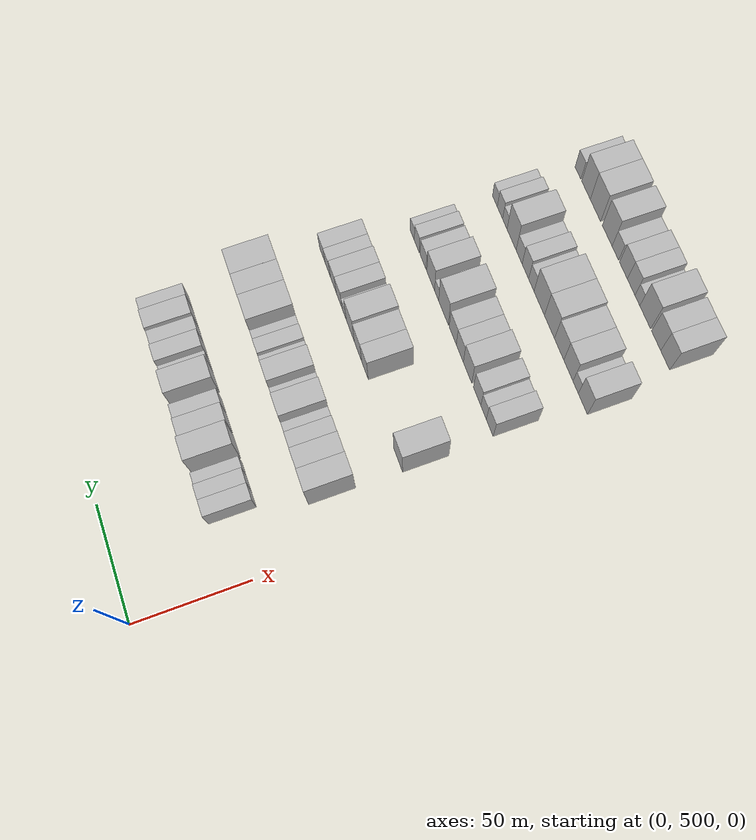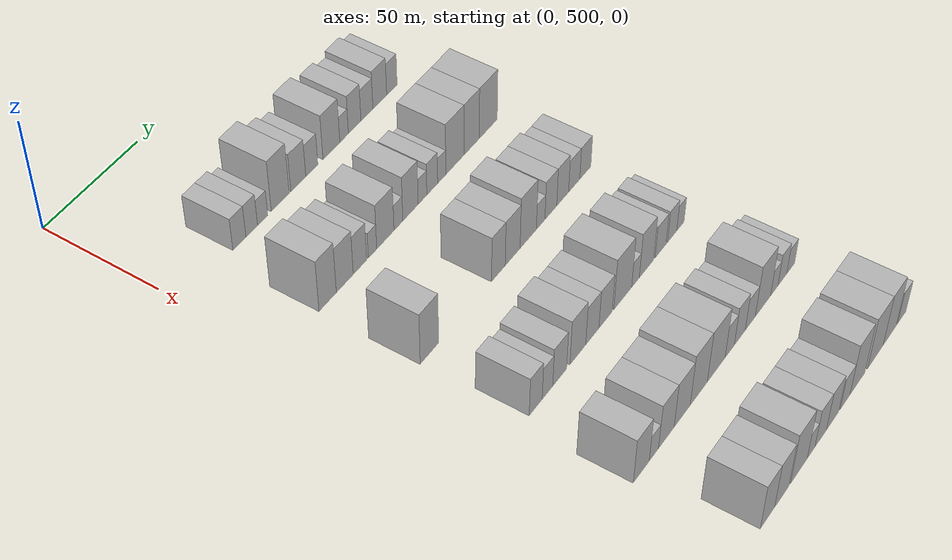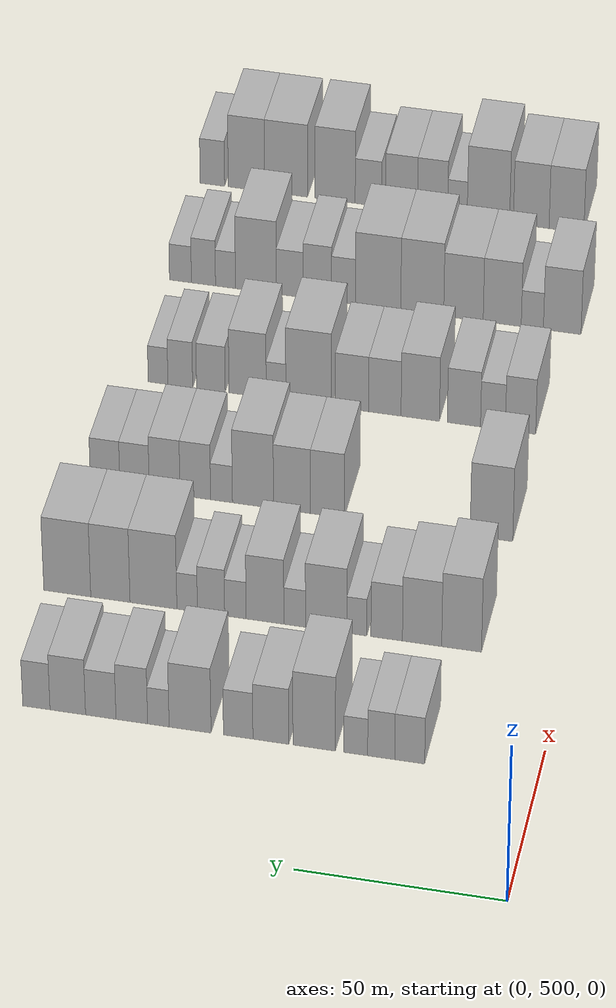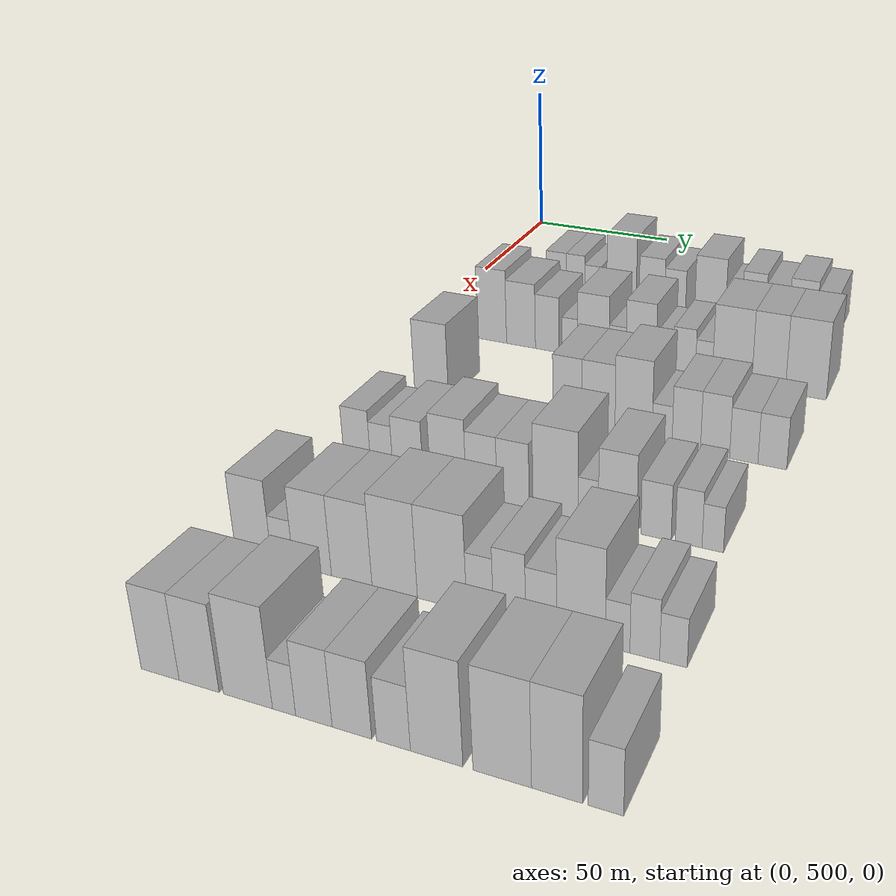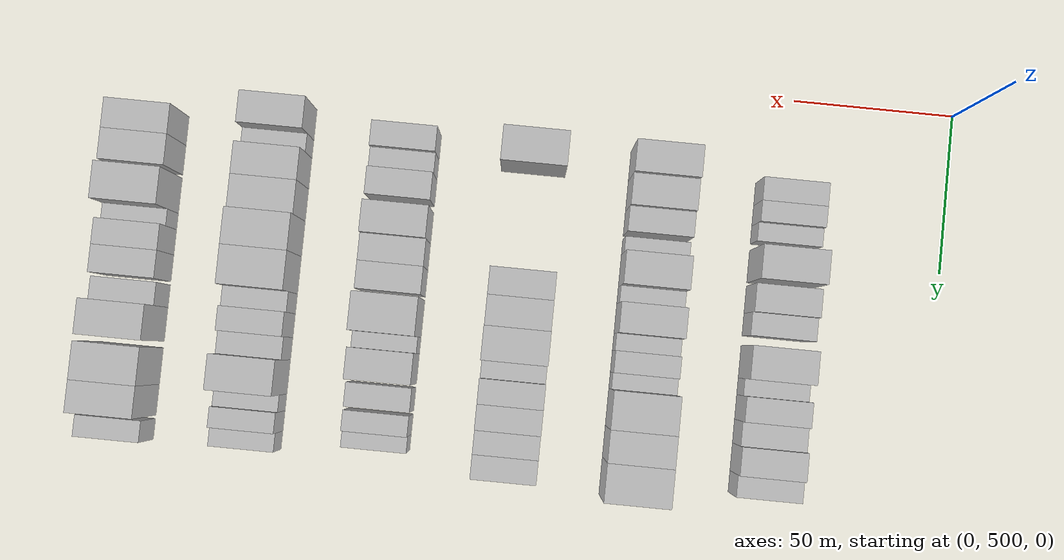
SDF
<sdf version="1.6">
 <world name="default">
  <model name="building_132">
   <static>1</static>
   <pose>50.0000 530.6656 0 0.000000 0.000000 0.000000</pose>
   <link name="link">
    <pose>0 0 7.50 0 0 0</pose>
    <collision name="collision"><geometry><box><size>20.0000 7.1678 15.0000</size></box></geometry></collision>
    <visual name="visual">
     <cast_shadows>0</cast_shadows>
     <geometry><box><size>20.0000 7.1678 15.0000</size></box></geometry>
     <material>
      <script>
       <uri>model://HANNAS_wall/materials/scripts</uri>
       <uri>model://HANNAS_wall/materials/textures</uri>
       <name>vrc/HANNAS_wall</name>
      </script>
     </material>
    </visual>
   </link>
  </model>
  <model name="building_133">
   <static>1</static>
   <pose>50.0000 537.4886 0 0.000000 0.000000 0.000000</pose>
   <link name="link">
    <pose>0 0 7.50 0 0 0</pose>
    <collision name="collision"><geometry><box><size>20.0000 6.4783 15.0000</size></box></geometry></collision>
    <visual name="visual">
     <cast_shadows>0</cast_shadows>
     <geometry><box><size>20.0000 6.4783 15.0000</size></box></geometry>
     <material>
      <script>
       <uri>model://HANNAS_wall/materials/scripts</uri>
       <uri>model://HANNAS_wall/materials/textures</uri>
       <name>vrc/HANNAS_wall</name>
      </script>
     </material>
    </visual>
   </link>
  </model>
  <model name="building_134">
   <static>1</static>
   <pose>50.0000 543.5851 0 0.000000 0.000000 0.000000</pose>
   <link name="link">
    <pose>0 0 6.00 0 0 0</pose>
    <collision name="collision"><geometry><box><size>20.0000 5.7146 12.0000</size></box></geometry></collision>
    <visual name="visual">
     <cast_shadows>0</cast_shadows>
     <geometry><box><size>20.0000 5.7146 12.0000</size></box></geometry>
     <material>
      <script>
       <uri>model://HANNAS_wall/materials/scripts</uri>
       <uri>model://HANNAS_wall/materials/textures</uri>
       <name>vrc/HANNAS_wall</name>
      </script>
     </material>
    </visual>
   </link>
  </model>
  <model name="building_135">
   <static>1</static>
   <pose>50.0000 553.5461 0 0.000000 0.000000 0.000000</pose>
   <link name="link">
    <pose>0 0 12.00 0 0 0</pose>
    <collision name="collision"><geometry><box><size>20.0000 10.2076 24.0000</size></box></geometry></collision>
    <visual name="visual">
     <cast_shadows>0</cast_shadows>
     <geometry><box><size>20.0000 10.2076 24.0000</size></box></geometry>
     <material>
      <script>
       <uri>model://HANNAS_wall/materials/scripts</uri>
       <uri>model://HANNAS_wall/materials/textures</uri>
       <name>vrc/HANNAS_wall</name>
      </script>
     </material>
    </visual>
   </link>
  </model>
  <model name="building_136">
   <static>1</static>
   <pose>50.0000 563.9717 0 0.000000 0.000000 0.000000</pose>
   <link name="link">
    <pose>0 0 9.00 0 0 0</pose>
    <collision name="collision"><geometry><box><size>20.0000 8.6435 18.0000</size></box></geometry></collision>
    <visual name="visual">
     <cast_shadows>0</cast_shadows>
     <geometry><box><size>20.0000 8.6435 18.0000</size></box></geometry>
     <material>
      <script>
       <uri>model://HANNAS_wall/materials/scripts</uri>
       <uri>model://HANNAS_wall/materials/textures</uri>
       <name>vrc/HANNAS_wall</name>
      </script>
     </material>
    </visual>
   </link>
  </model>
  <model name="building_137">
   <static>1</static>
   <pose>50.0000 571.8443 0 0.000000 0.000000 0.000000</pose>
   <link name="link">
    <pose>0 0 7.50 0 0 0</pose>
    <collision name="collision"><geometry><box><size>20.0000 7.1016 15.0000</size></box></geometry></collision>
    <visual name="visual">
     <cast_shadows>0</cast_shadows>
     <geometry><box><size>20.0000 7.1016 15.0000</size></box></geometry>
     <material>
      <script>
       <uri>model://HANNAS_wall/materials/scripts</uri>
       <uri>model://HANNAS_wall/materials/textures</uri>
       <name>vrc/HANNAS_wall</name>
      </script>
     </material>
    </visual>
   </link>
  </model>
  <model name="building_138">
   <static>1</static>
   <pose>50.0000 583.4645 0 0.000000 0.000000 0.000000</pose>
   <link name="link">
    <pose>0 0 10.50 0 0 0</pose>
    <collision name="collision"><geometry><box><size>20.0000 10.1388 21.0000</size></box></geometry></collision>
    <visual name="visual">
     <cast_shadows>0</cast_shadows>
     <geometry><box><size>20.0000 10.1388 21.0000</size></box></geometry>
     <material>
      <script>
       <uri>model://HANNAS_wall/materials/scripts</uri>
       <uri>model://HANNAS_wall/materials/textures</uri>
       <name>vrc/HANNAS_wall</name>
      </script>
     </material>
    </visual>
   </link>
  </model>
  <model name="building_139">
   <static>1</static>
   <pose>50.0000 591.1338 0 0.000000 0.000000 0.000000</pose>
   <link name="link">
    <pose>0 0 6.00 0 0 0</pose>
    <collision name="collision"><geometry><box><size>20.0000 5.1999 12.0000</size></box></geometry></collision>
    <visual name="visual">
     <cast_shadows>0</cast_shadows>
     <geometry><box><size>20.0000 5.1999 12.0000</size></box></geometry>
     <material>
      <script>
       <uri>model://HANNAS_wall/materials/scripts</uri>
       <uri>model://HANNAS_wall/materials/textures</uri>
       <name>vrc/HANNAS_wall</name>
      </script>
     </material>
    </visual>
   </link>
  </model>
  <model name="building_140">
   <static>1</static>
   <pose>50.0000 597.5724 0 0.000000 0.000000 0.000000</pose>
   <link name="link">
    <pose>0 0 9.00 0 0 0</pose>
    <collision name="collision"><geometry><box><size>20.0000 7.6772 18.0000</size></box></geometry></collision>
    <visual name="visual">
     <cast_shadows>0</cast_shadows>
     <geometry><box><size>20.0000 7.6772 18.0000</size></box></geometry>
     <material>
      <script>
       <uri>model://HANNAS_wall/materials/scripts</uri>
       <uri>model://HANNAS_wall/materials/textures</uri>
       <name>vrc/HANNAS_wall</name>
      </script>
     </material>
    </visual>
   </link>
  </model>
  <model name="building_141">
   <static>1</static>
   <pose>50.0000 605.1161 0 0.000000 0.000000 0.000000</pose>
   <link name="link">
    <pose>0 0 7.50 0 0 0</pose>
    <collision name="collision"><geometry><box><size>20.0000 7.4103 15.0000</size></box></geometry></collision>
    <visual name="visual">
     <cast_shadows>0</cast_shadows>
     <geometry><box><size>20.0000 7.4103 15.0000</size></box></geometry>
     <material>
      <script>
       <uri>model://HANNAS_wall/materials/scripts</uri>
       <uri>model://HANNAS_wall/materials/textures</uri>
       <name>vrc/HANNAS_wall</name>
      </script>
     </material>
    </visual>
   </link>
  </model>
  <model name="building_142">
   <static>1</static>
   <pose>50.0000 613.1414 0 0.000000 0.000000 0.000000</pose>
   <link name="link">
    <pose>0 0 9.00 0 0 0</pose>
    <collision name="collision"><geometry><box><size>20.0000 8.6403 18.0000</size></box></geometry></collision>
    <visual name="visual">
     <cast_shadows>0</cast_shadows>
     <geometry><box><size>20.0000 8.6403 18.0000</size></box></geometry>
     <material>
      <script>
       <uri>model://HANNAS_wall/materials/scripts</uri>
       <uri>model://HANNAS_wall/materials/textures</uri>
       <name>vrc/HANNAS_wall</name>
      </script>
     </material>
    </visual>
   </link>
  </model>
  <model name="building_143">
   <static>1</static>
   <pose>50.0000 620.7788 0 0.000000 0.000000 0.000000</pose>
   <link name="link">
    <pose>0 0 7.50 0 0 0</pose>
    <collision name="collision"><geometry><box><size>20.0000 6.6344 15.0000</size></box></geometry></collision>
    <visual name="visual">
     <cast_shadows>0</cast_shadows>
     <geometry><box><size>20.0000 6.6344 15.0000</size></box></geometry>
     <material>
      <script>
       <uri>model://HANNAS_wall/materials/scripts</uri>
       <uri>model://HANNAS_wall/materials/textures</uri>
       <name>vrc/HANNAS_wall</name>
      </script>
     </material>
    </visual>
   </link>
  </model>
  <model name="building_267">
   <static>1</static>
   <pose>90.0000 525.7651 0 0.000000 0.000000 0.000000</pose>
   <link name="link">
    <pose>0 0 12.00 0 0 0</pose>
    <collision name="collision"><geometry><box><size>20.0000 9.6996 24.0000</size></box></geometry></collision>
    <visual name="visual">
     <cast_shadows>0</cast_shadows>
     <geometry><box><size>20.0000 9.6996 24.0000</size></box></geometry>
     <material>
      <script>
       <uri>model://HANNAS_wall/materials/scripts</uri>
       <uri>model://HANNAS_wall/materials/textures</uri>
       <name>vrc/HANNAS_wall</name>
      </script>
     </material>
    </visual>
   </link>
  </model>
  <model name="building_268">
   <static>1</static>
   <pose>90.0000 535.4079 0 0.000000 0.000000 0.000000</pose>
   <link name="link">
    <pose>0 0 10.50 0 0 0</pose>
    <collision name="collision"><geometry><box><size>20.0000 9.5860 21.0000</size></box></geometry></collision>
    <visual name="visual">
     <cast_shadows>0</cast_shadows>
     <geometry><box><size>20.0000 9.5860 21.0000</size></box></geometry>
     <material>
      <script>
       <uri>model://HANNAS_wall/materials/scripts</uri>
       <uri>model://HANNAS_wall/materials/textures</uri>
       <name>vrc/HANNAS_wall</name>
      </script>
     </material>
    </visual>
   </link>
  </model>
  <model name="building_269">
   <static>1</static>
   <pose>90.0000 544.0535 0 0.000000 0.000000 0.000000</pose>
   <link name="link">
    <pose>0 0 9.00 0 0 0</pose>
    <collision name="collision"><geometry><box><size>20.0000 7.7052 18.0000</size></box></geometry></collision>
    <visual name="visual">
     <cast_shadows>0</cast_shadows>
     <geometry><box><size>20.0000 7.7052 18.0000</size></box></geometry>
     <material>
      <script>
       <uri>model://HANNAS_wall/materials/scripts</uri>
       <uri>model://HANNAS_wall/materials/textures</uri>
       <name>vrc/HANNAS_wall</name>
      </script>
     </material>
    </visual>
   </link>
  </model>
  <model name="building_270">
   <static>1</static>
   <pose>90.0000 551.3559 0 0.000000 0.000000 0.000000</pose>
   <link name="link">
    <pose>0 0 6.00 0 0 0</pose>
    <collision name="collision"><geometry><box><size>20.0000 4.8997 12.0000</size></box></geometry></collision>
    <visual name="visual">
     <cast_shadows>0</cast_shadows>
     <geometry><box><size>20.0000 4.8997 12.0000</size></box></geometry>
     <material>
      <script>
       <uri>model://HANNAS_wall/materials/scripts</uri>
       <uri>model://HANNAS_wall/materials/textures</uri>
       <name>vrc/HANNAS_wall</name>
      </script>
     </material>
    </visual>
   </link>
  </model>
  <model name="building_271">
   <static>1</static>
   <pose>90.0000 558.8829 0 0.000000 0.000000 0.000000</pose>
   <link name="link">
    <pose>0 0 10.50 0 0 0</pose>
    <collision name="collision"><geometry><box><size>20.0000 10.1544 21.0000</size></box></geometry></collision>
    <visual name="visual">
     <cast_shadows>0</cast_shadows>
     <geometry><box><size>20.0000 10.1544 21.0000</size></box></geometry>
     <material>
      <script>
       <uri>model://HANNAS_wall/materials/scripts</uri>
       <uri>model://HANNAS_wall/materials/textures</uri>
       <name>vrc/HANNAS_wall</name>
      </script>
     </material>
    </visual>
   </link>
  </model>
  <model name="building_272">
   <static>1</static>
   <pose>90.0000 566.6121 0 0.000000 0.000000 0.000000</pose>
   <link name="link">
    <pose>0 0 6.00 0 0 0</pose>
    <collision name="collision"><geometry><box><size>20.0000 5.3039 12.0000</size></box></geometry></collision>
    <visual name="visual">
     <cast_shadows>0</cast_shadows>
     <geometry><box><size>20.0000 5.3039 12.0000</size></box></geometry>
     <material>
      <script>
       <uri>model://HANNAS_wall/materials/scripts</uri>
       <uri>model://HANNAS_wall/materials/textures</uri>
       <name>vrc/HANNAS_wall</name>
      </script>
     </material>
    </visual>
   </link>
  </model>
  <model name="building_273">
   <static>1</static>
   <pose>90.0000 573.9076 0 0.000000 0.000000 0.000000</pose>
   <link name="link">
    <pose>0 0 10.50 0 0 0</pose>
    <collision name="collision"><geometry><box><size>20.0000 9.2871 21.0000</size></box></geometry></collision>
    <visual name="visual">
     <cast_shadows>0</cast_shadows>
     <geometry><box><size>20.0000 9.2871 21.0000</size></box></geometry>
     <material>
      <script>
       <uri>model://HANNAS_wall/materials/scripts</uri>
       <uri>model://HANNAS_wall/materials/textures</uri>
       <name>vrc/HANNAS_wall</name>
      </script>
     </material>
    </visual>
   </link>
  </model>
  <model name="building_274">
   <static>1</static>
   <pose>90.0000 581.2030 0 0.000000 0.000000 0.000000</pose>
   <link name="link">
    <pose>0 0 6.00 0 0 0</pose>
    <collision name="collision"><geometry><box><size>20.0000 5.3037 12.0000</size></box></geometry></collision>
    <visual name="visual">
     <cast_shadows>0</cast_shadows>
     <geometry><box><size>20.0000 5.3037 12.0000</size></box></geometry>
     <material>
      <script>
       <uri>model://HANNAS_wall/materials/scripts</uri>
       <uri>model://HANNAS_wall/materials/textures</uri>
       <name>vrc/HANNAS_wall</name>
      </script>
     </material>
    </visual>
   </link>
  </model>
  <model name="building_275">
   <static>1</static>
   <pose>90.0000 587.2136 0 0.000000 0.000000 0.000000</pose>
   <link name="link">
    <pose>0 0 7.50 0 0 0</pose>
    <collision name="collision"><geometry><box><size>20.0000 6.7175 15.0000</size></box></geometry></collision>
    <visual name="visual">
     <cast_shadows>0</cast_shadows>
     <geometry><box><size>20.0000 6.7175 15.0000</size></box></geometry>
     <material>
      <script>
       <uri>model://HANNAS_wall/materials/scripts</uri>
       <uri>model://HANNAS_wall/materials/textures</uri>
       <name>vrc/HANNAS_wall</name>
      </script>
     </material>
    </visual>
   </link>
  </model>
  <model name="building_276">
   <static>1</static>
   <pose>90.0000 593.1107 0 0.000000 0.000000 0.000000</pose>
   <link name="link">
    <pose>0 0 6.00 0 0 0</pose>
    <collision name="collision"><geometry><box><size>20.0000 5.0767 12.0000</size></box></geometry></collision>
    <visual name="visual">
     <cast_shadows>0</cast_shadows>
     <geometry><box><size>20.0000 5.0767 12.0000</size></box></geometry>
     <material>
      <script>
       <uri>model://HANNAS_wall/materials/scripts</uri>
       <uri>model://HANNAS_wall/materials/textures</uri>
       <name>vrc/HANNAS_wall</name>
      </script>
     </material>
    </visual>
   </link>
  </model>
  <model name="building_277">
   <static>1</static>
   <pose>90.0000 601.4571 0 0.000000 0.000000 0.000000</pose>
   <link name="link">
    <pose>0 0 12.00 0 0 0</pose>
    <collision name="collision"><geometry><box><size>20.0000 11.6161 24.0000</size></box></geometry></collision>
    <visual name="visual">
     <cast_shadows>0</cast_shadows>
     <geometry><box><size>20.0000 11.6161 24.0000</size></box></geometry>
     <material>
      <script>
       <uri>model://HANNAS_wall/materials/scripts</uri>
       <uri>model://HANNAS_wall/materials/textures</uri>
       <name>vrc/HANNAS_wall</name>
      </script>
     </material>
    </visual>
   </link>
  </model>
  <model name="building_278">
   <static>1</static>
   <pose>90.0000 612.1352 0 0.000000 0.000000 0.000000</pose>
   <link name="link">
    <pose>0 0 12.00 0 0 0</pose>
    <collision name="collision"><geometry><box><size>20.0000 9.7401 24.0000</size></box></geometry></collision>
    <visual name="visual">
     <cast_shadows>0</cast_shadows>
     <geometry><box><size>20.0000 9.7401 24.0000</size></box></geometry>
     <material>
      <script>
       <uri>model://HANNAS_wall/materials/scripts</uri>
       <uri>model://HANNAS_wall/materials/textures</uri>
       <name>vrc/HANNAS_wall</name>
      </script>
     </material>
    </visual>
   </link>
  </model>
  <model name="building_279">
   <static>1</static>
   <pose>90.0000 622.8397 0 0.000000 0.000000 0.000000</pose>
   <link name="link">
    <pose>0 0 12.00 0 0 0</pose>
    <collision name="collision"><geometry><box><size>20.0000 11.6688 24.0000</size></box></geometry></collision>
    <visual name="visual">
     <cast_shadows>0</cast_shadows>
     <geometry><box><size>20.0000 11.6688 24.0000</size></box></geometry>
     <material>
      <script>
       <uri>model://HANNAS_wall/materials/scripts</uri>
       <uri>model://HANNAS_wall/materials/textures</uri>
       <name>vrc/HANNAS_wall</name>
      </script>
     </material>
    </visual>
   </link>
  </model>
  <model name="building_410">
   <static>1</static>
   <pose>130.0000 525.8343 0 0.000000 0.000000 0.000000</pose>
   <link name="link">
    <pose>0 0 12.00 0 0 0</pose>
    <collision name="collision"><geometry><box><size>20.0000 10.5964 24.0000</size></box></geometry></collision>
    <visual name="visual">
     <cast_shadows>0</cast_shadows>
     <geometry><box><size>20.0000 10.5964 24.0000</size></box></geometry>
     <material>
      <script>
       <uri>model://HANNAS_wall/materials/scripts</uri>
       <uri>model://HANNAS_wall/materials/textures</uri>
       <name>vrc/HANNAS_wall</name>
      </script>
     </material>
    </visual>
   </link>
  </model>
  <model name="building_411">
   <static>1</static>
   <pose>130.0000 566.7801 0 0.000000 0.000000 0.000000</pose>
   <link name="link">
    <pose>0 0 10.50 0 0 0</pose>
    <collision name="collision"><geometry><box><size>20.0000 8.4317 21.0000</size></box></geometry></collision>
    <visual name="visual">
     <cast_shadows>0</cast_shadows>
     <geometry><box><size>20.0000 8.4317 21.0000</size></box></geometry>
     <material>
      <script>
       <uri>model://HANNAS_wall/materials/scripts</uri>
       <uri>model://HANNAS_wall/materials/textures</uri>
       <name>vrc/HANNAS_wall</name>
      </script>
     </material>
    </visual>
   </link>
  </model>
  <model name="building_412">
   <static>1</static>
   <pose>130.0000 575.6464 0 0.000000 0.000000 0.000000</pose>
   <link name="link">
    <pose>0 0 10.50 0 0 0</pose>
    <collision name="collision"><geometry><box><size>20.0000 9.3010 21.0000</size></box></geometry></collision>
    <visual name="visual">
     <cast_shadows>0</cast_shadows>
     <geometry><box><size>20.0000 9.3010 21.0000</size></box></geometry>
     <material>
      <script>
       <uri>model://HANNAS_wall/materials/scripts</uri>
       <uri>model://HANNAS_wall/materials/textures</uri>
       <name>vrc/HANNAS_wall</name>
      </script>
     </material>
    </visual>
   </link>
  </model>
  <model name="building_413">
   <static>1</static>
   <pose>130.0000 585.4665 0 0.000000 0.000000 0.000000</pose>
   <link name="link">
    <pose>0 0 12.00 0 0 0</pose>
    <collision name="collision"><geometry><box><size>20.0000 10.3392 24.0000</size></box></geometry></collision>
    <visual name="visual">
     <cast_shadows>0</cast_shadows>
     <geometry><box><size>20.0000 10.3392 24.0000</size></box></geometry>
     <material>
      <script>
       <uri>model://HANNAS_wall/materials/scripts</uri>
       <uri>model://HANNAS_wall/materials/textures</uri>
       <name>vrc/HANNAS_wall</name>
      </script>
     </material>
    </visual>
   </link>
  </model>
  <model name="building_414">
   <static>1</static>
   <pose>130.0000 593.3868 0 0.000000 0.000000 0.000000</pose>
   <link name="link">
    <pose>0 0 6.00 0 0 0</pose>
    <collision name="collision"><geometry><box><size>20.0000 5.5014 12.0000</size></box></geometry></collision>
    <visual name="visual">
     <cast_shadows>0</cast_shadows>
     <geometry><box><size>20.0000 5.5014 12.0000</size></box></geometry>
     <material>
      <script>
       <uri>model://HANNAS_wall/materials/scripts</uri>
       <uri>model://HANNAS_wall/materials/textures</uri>
       <name>vrc/HANNAS_wall</name>
      </script>
     </material>
    </visual>
   </link>
  </model>
  <model name="building_415">
   <static>1</static>
   <pose>130.0000 599.9892 0 0.000000 0.000000 0.000000</pose>
   <link name="link">
    <pose>0 0 9.00 0 0 0</pose>
    <collision name="collision"><geometry><box><size>20.0000 7.7034 18.0000</size></box></geometry></collision>
    <visual name="visual">
     <cast_shadows>0</cast_shadows>
     <geometry><box><size>20.0000 7.7034 18.0000</size></box></geometry>
     <material>
      <script>
       <uri>model://HANNAS_wall/materials/scripts</uri>
       <uri>model://HANNAS_wall/materials/textures</uri>
       <name>vrc/HANNAS_wall</name>
      </script>
     </material>
    </visual>
   </link>
  </model>
  <model name="building_416">
   <static>1</static>
   <pose>130.0000 607.7310 0 0.000000 0.000000 0.000000</pose>
   <link name="link">
    <pose>0 0 9.00 0 0 0</pose>
    <collision name="collision"><geometry><box><size>20.0000 7.7802 18.0000</size></box></geometry></collision>
    <visual name="visual">
     <cast_shadows>0</cast_shadows>
     <geometry><box><size>20.0000 7.7802 18.0000</size></box></geometry>
     <material>
      <script>
       <uri>model://HANNAS_wall/materials/scripts</uri>
       <uri>model://HANNAS_wall/materials/textures</uri>
       <name>vrc/HANNAS_wall</name>
      </script>
     </material>
    </visual>
   </link>
  </model>
  <model name="building_417">
   <static>1</static>
   <pose>130.0000 615.3475 0 0.000000 0.000000 0.000000</pose>
   <link name="link">
    <pose>0 0 7.50 0 0 0</pose>
    <collision name="collision"><geometry><box><size>20.0000 7.4529 15.0000</size></box></geometry></collision>
    <visual name="visual">
     <cast_shadows>0</cast_shadows>
     <geometry><box><size>20.0000 7.4529 15.0000</size></box></geometry>
     <material>
      <script>
       <uri>model://HANNAS_wall/materials/scripts</uri>
       <uri>model://HANNAS_wall/materials/textures</uri>
       <name>vrc/HANNAS_wall</name>
      </script>
     </material>
    </visual>
   </link>
  </model>
  <model name="building_418">
   <static>1</static>
   <pose>130.0000 622.8032 0 0.000000 0.000000 0.000000</pose>
   <link name="link">
    <pose>0 0 7.50 0 0 0</pose>
    <collision name="collision"><geometry><box><size>20.0000 7.4585 15.0000</size></box></geometry></collision>
    <visual name="visual">
     <cast_shadows>0</cast_shadows>
     <geometry><box><size>20.0000 7.4585 15.0000</size></box></geometry>
     <material>
      <script>
       <uri>model://HANNAS_wall/materials/scripts</uri>
       <uri>model://HANNAS_wall/materials/textures</uri>
       <name>vrc/HANNAS_wall</name>
      </script>
     </material>
    </visual>
   </link>
  </model>
  <model name="building_552">
   <static>1</static>
   <pose>170.0000 525.7999 0 0.000000 0.000000 0.000000</pose>
   <link name="link">
    <pose>0 0 9.00 0 0 0</pose>
    <collision name="collision"><geometry><box><size>20.0000 7.6884 18.0000</size></box></geometry></collision>
    <visual name="visual">
     <cast_shadows>0</cast_shadows>
     <geometry><box><size>20.0000 7.6884 18.0000</size></box></geometry>
     <material>
      <script>
       <uri>model://HANNAS_wall/materials/scripts</uri>
       <uri>model://HANNAS_wall/materials/textures</uri>
       <name>vrc/HANNAS_wall</name>
      </script>
     </material>
    </visual>
   </link>
  </model>
  <model name="building_553">
   <static>1</static>
   <pose>170.0000 532.7925 0 0.000000 0.000000 0.000000</pose>
   <link name="link">
    <pose>0 0 7.50 0 0 0</pose>
    <collision name="collision"><geometry><box><size>20.0000 6.2967 15.0000</size></box></geometry></collision>
    <visual name="visual">
     <cast_shadows>0</cast_shadows>
     <geometry><box><size>20.0000 6.2967 15.0000</size></box></geometry>
     <material>
      <script>
       <uri>model://HANNAS_wall/materials/scripts</uri>
       <uri>model://HANNAS_wall/materials/textures</uri>
       <name>vrc/HANNAS_wall</name>
      </script>
     </material>
    </visual>
   </link>
  </model>
  <model name="building_554">
   <static>1</static>
   <pose>170.0000 540.1627 0 0.000000 0.000000 0.000000</pose>
   <link name="link">
    <pose>0 0 9.00 0 0 0</pose>
    <collision name="collision"><geometry><box><size>20.0000 8.4438 18.0000</size></box></geometry></collision>
    <visual name="visual">
     <cast_shadows>0</cast_shadows>
     <geometry><box><size>20.0000 8.4438 18.0000</size></box></geometry>
     <material>
      <script>
       <uri>model://HANNAS_wall/materials/scripts</uri>
       <uri>model://HANNAS_wall/materials/textures</uri>
       <name>vrc/HANNAS_wall</name>
      </script>
     </material>
    </visual>
   </link>
  </model>
  <model name="building_555">
   <static>1</static>
   <pose>170.0000 551.2762 0 0.000000 0.000000 0.000000</pose>
   <link name="link">
    <pose>0 0 10.50 0 0 0</pose>
    <collision name="collision"><geometry><box><size>20.0000 9.7831 21.0000</size></box></geometry></collision>
    <visual name="visual">
     <cast_shadows>0</cast_shadows>
     <geometry><box><size>20.0000 9.7831 21.0000</size></box></geometry>
     <material>
      <script>
       <uri>model://HANNAS_wall/materials/scripts</uri>
       <uri>model://HANNAS_wall/materials/textures</uri>
       <name>vrc/HANNAS_wall</name>
      </script>
     </material>
    </visual>
   </link>
  </model>
  <model name="building_556">
   <static>1</static>
   <pose>170.0000 560.3226 0 0.000000 0.000000 0.000000</pose>
   <link name="link">
    <pose>0 0 9.00 0 0 0</pose>
    <collision name="collision"><geometry><box><size>20.0000 8.3097 18.0000</size></box></geometry></collision>
    <visual name="visual">
     <cast_shadows>0</cast_shadows>
     <geometry><box><size>20.0000 8.3097 18.0000</size></box></geometry>
     <material>
      <script>
       <uri>model://HANNAS_wall/materials/scripts</uri>
       <uri>model://HANNAS_wall/materials/textures</uri>
       <name>vrc/HANNAS_wall</name>
      </script>
     </material>
    </visual>
   </link>
  </model>
  <model name="building_557">
   <static>1</static>
   <pose>170.0000 568.7270 0 0.000000 0.000000 0.000000</pose>
   <link name="link">
    <pose>0 0 9.00 0 0 0</pose>
    <collision name="collision"><geometry><box><size>20.0000 8.4990 18.0000</size></box></geometry></collision>
    <visual name="visual">
     <cast_shadows>0</cast_shadows>
     <geometry><box><size>20.0000 8.4990 18.0000</size></box></geometry>
     <material>
      <script>
       <uri>model://HANNAS_wall/materials/scripts</uri>
       <uri>model://HANNAS_wall/materials/textures</uri>
       <name>vrc/HANNAS_wall</name>
      </script>
     </material>
    </visual>
   </link>
  </model>
  <model name="building_558">
   <static>1</static>
   <pose>170.0000 579.8018 0 0.000000 0.000000 0.000000</pose>
   <link name="link">
    <pose>0 0 12.00 0 0 0</pose>
    <collision name="collision"><geometry><box><size>20.0000 11.6506 24.0000</size></box></geometry></collision>
    <visual name="visual">
     <cast_shadows>0</cast_shadows>
     <geometry><box><size>20.0000 11.6506 24.0000</size></box></geometry>
     <material>
      <script>
       <uri>model://HANNAS_wall/materials/scripts</uri>
       <uri>model://HANNAS_wall/materials/textures</uri>
       <name>vrc/HANNAS_wall</name>
      </script>
     </material>
    </visual>
   </link>
  </model>
  <model name="building_559">
   <static>1</static>
   <pose>170.0000 588.1463 0 0.000000 0.000000 0.000000</pose>
   <link name="link">
    <pose>0 0 6.00 0 0 0</pose>
    <collision name="collision"><geometry><box><size>20.0000 5.0384 12.0000</size></box></geometry></collision>
    <visual name="visual">
     <cast_shadows>0</cast_shadows>
     <geometry><box><size>20.0000 5.0384 12.0000</size></box></geometry>
     <material>
      <script>
       <uri>model://HANNAS_wall/materials/scripts</uri>
       <uri>model://HANNAS_wall/materials/textures</uri>
       <name>vrc/HANNAS_wall</name>
      </script>
     </material>
    </visual>
   </link>
  </model>
  <model name="building_560">
   <static>1</static>
   <pose>170.0000 595.4310 0 0.000000 0.000000 0.000000</pose>
   <link name="link">
    <pose>0 0 10.50 0 0 0</pose>
    <collision name="collision"><geometry><box><size>20.0000 9.5310 21.0000</size></box></geometry></collision>
    <visual name="visual">
     <cast_shadows>0</cast_shadows>
     <geometry><box><size>20.0000 9.5310 21.0000</size></box></geometry>
     <material>
      <script>
       <uri>model://HANNAS_wall/materials/scripts</uri>
       <uri>model://HANNAS_wall/materials/textures</uri>
       <name>vrc/HANNAS_wall</name>
      </script>
     </material>
    </visual>
   </link>
  </model>
  <model name="building_561">
   <static>1</static>
   <pose>170.0000 604.8926 0 0.000000 0.000000 0.000000</pose>
   <link name="link">
    <pose>0 0 7.50 0 0 0</pose>
    <collision name="collision"><geometry><box><size>20.0000 7.3923 15.0000</size></box></geometry></collision>
    <visual name="visual">
     <cast_shadows>0</cast_shadows>
     <geometry><box><size>20.0000 7.3923 15.0000</size></box></geometry>
     <material>
      <script>
       <uri>model://HANNAS_wall/materials/scripts</uri>
       <uri>model://HANNAS_wall/materials/textures</uri>
       <name>vrc/HANNAS_wall</name>
      </script>
     </material>
    </visual>
   </link>
  </model>
  <model name="building_562">
   <static>1</static>
   <pose>170.0000 612.7747 0 0.000000 0.000000 0.000000</pose>
   <link name="link">
    <pose>0 0 7.50 0 0 0</pose>
    <collision name="collision"><geometry><box><size>20.0000 6.3718 15.0000</size></box></geometry></collision>
    <visual name="visual">
     <cast_shadows>0</cast_shadows>
     <geometry><box><size>20.0000 6.3718 15.0000</size></box></geometry>
     <material>
      <script>
       <uri>model://HANNAS_wall/materials/scripts</uri>
       <uri>model://HANNAS_wall/materials/textures</uri>
       <name>vrc/HANNAS_wall</name>
      </script>
     </material>
    </visual>
   </link>
  </model>
  <model name="building_563">
   <static>1</static>
   <pose>170.0000 618.5030 0 0.000000 0.000000 0.000000</pose>
   <link name="link">
    <pose>0 0 6.00 0 0 0</pose>
    <collision name="collision"><geometry><box><size>20.0000 5.0849 12.0000</size></box></geometry></collision>
    <visual name="visual">
     <cast_shadows>0</cast_shadows>
     <geometry><box><size>20.0000 5.0849 12.0000</size></box></geometry>
     <material>
      <script>
       <uri>model://HANNAS_wall/materials/scripts</uri>
       <uri>model://HANNAS_wall/materials/textures</uri>
       <name>vrc/HANNAS_wall</name>
      </script>
     </material>
    </visual>
   </link>
  </model>
  <model name="building_688">
   <static>1</static>
   <pose>210.0000 522.2092 0 0.000000 0.000000 0.000000</pose>
   <link name="link">
    <pose>0 0 10.50 0 0 0</pose>
    <collision name="collision"><geometry><box><size>20.0000 9.7030 21.0000</size></box></geometry></collision>
    <visual name="visual">
     <cast_shadows>0</cast_shadows>
     <geometry><box><size>20.0000 9.7030 21.0000</size></box></geometry>
     <material>
      <script>
       <uri>model://HANNAS_wall/materials/scripts</uri>
       <uri>model://HANNAS_wall/materials/textures</uri>
       <name>vrc/HANNAS_wall</name>
      </script>
     </material>
    </visual>
   </link>
  </model>
  <model name="building_689">
   <static>1</static>
   <pose>210.0000 529.9268 0 0.000000 0.000000 0.000000</pose>
   <link name="link">
    <pose>0 0 6.00 0 0 0</pose>
    <collision name="collision"><geometry><box><size>20.0000 5.7322 12.0000</size></box></geometry></collision>
    <visual name="visual">
     <cast_shadows>0</cast_shadows>
     <geometry><box><size>20.0000 5.7322 12.0000</size></box></geometry>
     <material>
      <script>
       <uri>model://HANNAS_wall/materials/scripts</uri>
       <uri>model://HANNAS_wall/materials/textures</uri>
       <name>vrc/HANNAS_wall</name>
      </script>
     </material>
    </visual>
   </link>
  </model>
  <model name="building_690">
   <static>1</static>
   <pose>210.0000 537.7206 0 0.000000 0.000000 0.000000</pose>
   <link name="link">
    <pose>0 0 10.50 0 0 0</pose>
    <collision name="collision"><geometry><box><size>20.0000 9.8555 21.0000</size></box></geometry></collision>
    <visual name="visual">
     <cast_shadows>0</cast_shadows>
     <geometry><box><size>20.0000 9.8555 21.0000</size></box></geometry>
     <material>
      <script>
       <uri>model://HANNAS_wall/materials/scripts</uri>
       <uri>model://HANNAS_wall/materials/textures</uri>
       <name>vrc/HANNAS_wall</name>
      </script>
     </material>
    </visual>
   </link>
  </model>
  <model name="building_691">
   <static>1</static>
   <pose>210.0000 547.7701 0 0.000000 0.000000 0.000000</pose>
   <link name="link">
    <pose>0 0 10.50 0 0 0</pose>
    <collision name="collision"><geometry><box><size>20.0000 10.2434 21.0000</size></box></geometry></collision>
    <visual name="visual">
     <cast_shadows>0</cast_shadows>
     <geometry><box><size>20.0000 10.2434 21.0000</size></box></geometry>
     <material>
      <script>
       <uri>model://HANNAS_wall/materials/scripts</uri>
       <uri>model://HANNAS_wall/materials/textures</uri>
       <name>vrc/HANNAS_wall</name>
      </script>
     </material>
    </visual>
   </link>
  </model>
  <model name="building_692">
   <static>1</static>
   <pose>210.0000 558.4741 0 0.000000 0.000000 0.000000</pose>
   <link name="link">
    <pose>0 0 12.00 0 0 0</pose>
    <collision name="collision"><geometry><box><size>20.0000 11.1648 24.0000</size></box></geometry></collision>
    <visual name="visual">
     <cast_shadows>0</cast_shadows>
     <geometry><box><size>20.0000 11.1648 24.0000</size></box></geometry>
     <material>
      <script>
       <uri>model://HANNAS_wall/materials/scripts</uri>
       <uri>model://HANNAS_wall/materials/textures</uri>
       <name>vrc/HANNAS_wall</name>
      </script>
     </material>
    </visual>
   </link>
  </model>
  <model name="building_693">
   <static>1</static>
   <pose>210.0000 569.9582 0 0.000000 0.000000 0.000000</pose>
   <link name="link">
    <pose>0 0 12.00 0 0 0</pose>
    <collision name="collision"><geometry><box><size>20.0000 11.8034 24.0000</size></box></geometry></collision>
    <visual name="visual">
     <cast_shadows>0</cast_shadows>
     <geometry><box><size>20.0000 11.8034 24.0000</size></box></geometry>
     <material>
      <script>
       <uri>model://HANNAS_wall/materials/scripts</uri>
       <uri>model://HANNAS_wall/materials/textures</uri>
       <name>vrc/HANNAS_wall</name>
      </script>
     </material>
    </visual>
   </link>
  </model>
  <model name="building_694">
   <static>1</static>
   <pose>210.0000 578.9767 0 0.000000 0.000000 0.000000</pose>
   <link name="link">
    <pose>0 0 7.50 0 0 0</pose>
    <collision name="collision"><geometry><box><size>20.0000 6.2336 15.0000</size></box></geometry></collision>
    <visual name="visual">
     <cast_shadows>0</cast_shadows>
     <geometry><box><size>20.0000 6.2336 15.0000</size></box></geometry>
     <material>
      <script>
       <uri>model://HANNAS_wall/materials/scripts</uri>
       <uri>model://HANNAS_wall/materials/textures</uri>
       <name>vrc/HANNAS_wall</name>
      </script>
     </material>
    </visual>
   </link>
  </model>
  <model name="building_695">
   <static>1</static>
   <pose>210.0000 585.8235 0 0.000000 0.000000 0.000000</pose>
   <link name="link">
    <pose>0 0 9.00 0 0 0</pose>
    <collision name="collision"><geometry><box><size>20.0000 7.4600 18.0000</size></box></geometry></collision>
    <visual name="visual">
     <cast_shadows>0</cast_shadows>
     <geometry><box><size>20.0000 7.4600 18.0000</size></box></geometry>
     <material>
      <script>
       <uri>model://HANNAS_wall/materials/scripts</uri>
       <uri>model://HANNAS_wall/materials/textures</uri>
       <name>vrc/HANNAS_wall</name>
      </script>
     </material>
    </visual>
   </link>
  </model>
  <model name="building_696">
   <static>1</static>
   <pose>210.0000 593.0380 0 0.000000 0.000000 0.000000</pose>
   <link name="link">
    <pose>0 0 7.50 0 0 0</pose>
    <collision name="collision"><geometry><box><size>20.0000 6.9689 15.0000</size></box></geometry></collision>
    <visual name="visual">
     <cast_shadows>0</cast_shadows>
     <geometry><box><size>20.0000 6.9689 15.0000</size></box></geometry>
     <material>
      <script>
       <uri>model://HANNAS_wall/materials/scripts</uri>
       <uri>model://HANNAS_wall/materials/textures</uri>
       <name>vrc/HANNAS_wall</name>
      </script>
     </material>
    </visual>
   </link>
  </model>
  <model name="building_697">
   <static>1</static>
   <pose>210.0000 601.8805 0 0.000000 0.000000 0.000000</pose>
   <link name="link">
    <pose>0 0 12.00 0 0 0</pose>
    <collision name="collision"><geometry><box><size>20.0000 10.7162 24.0000</size></box></geometry></collision>
    <visual name="visual">
     <cast_shadows>0</cast_shadows>
     <geometry><box><size>20.0000 10.7162 24.0000</size></box></geometry>
     <material>
      <script>
       <uri>model://HANNAS_wall/materials/scripts</uri>
       <uri>model://HANNAS_wall/materials/textures</uri>
       <name>vrc/HANNAS_wall</name>
      </script>
     </material>
    </visual>
   </link>
  </model>
  <model name="building_698">
   <static>1</static>
   <pose>210.0000 609.8697 0 0.000000 0.000000 0.000000</pose>
   <link name="link">
    <pose>0 0 6.00 0 0 0</pose>
    <collision name="collision"><geometry><box><size>20.0000 5.2622 12.0000</size></box></geometry></collision>
    <visual name="visual">
     <cast_shadows>0</cast_shadows>
     <geometry><box><size>20.0000 5.2622 12.0000</size></box></geometry>
     <material>
      <script>
       <uri>model://HANNAS_wall/materials/scripts</uri>
       <uri>model://HANNAS_wall/materials/textures</uri>
       <name>vrc/HANNAS_wall</name>
      </script>
     </material>
    </visual>
   </link>
  </model>
  <model name="building_699">
   <static>1</static>
   <pose>210.0000 615.6622 0 0.000000 0.000000 0.000000</pose>
   <link name="link">
    <pose>0 0 7.50 0 0 0</pose>
    <collision name="collision"><geometry><box><size>20.0000 6.3228 15.0000</size></box></geometry></collision>
    <visual name="visual">
     <cast_shadows>0</cast_shadows>
     <geometry><box><size>20.0000 6.3228 15.0000</size></box></geometry>
     <material>
      <script>
       <uri>model://HANNAS_wall/materials/scripts</uri>
       <uri>model://HANNAS_wall/materials/textures</uri>
       <name>vrc/HANNAS_wall</name>
      </script>
     </material>
    </visual>
   </link>
  </model>
  <model name="building_700">
   <static>1</static>
   <pose>210.0000 621.7108 0 0.000000 0.000000 0.000000</pose>
   <link name="link">
    <pose>0 0 6.00 0 0 0</pose>
    <collision name="collision"><geometry><box><size>20.0000 5.7744 12.0000</size></box></geometry></collision>
    <visual name="visual">
     <cast_shadows>0</cast_shadows>
     <geometry><box><size>20.0000 5.7744 12.0000</size></box></geometry>
     <material>
      <script>
       <uri>model://HANNAS_wall/materials/scripts</uri>
       <uri>model://HANNAS_wall/materials/textures</uri>
       <name>vrc/HANNAS_wall</name>
      </script>
     </material>
    </visual>
   </link>
  </model>
  <model name="building_832">
   <static>1</static>
   <pose>250.0000 528.0573 0 0.000000 0.000000 0.000000</pose>
   <link name="link">
    <pose>0 0 10.50 0 0 0</pose>
    <collision name="collision"><geometry><box><size>20.0000 9.1602 21.0000</size></box></geometry></collision>
    <visual name="visual">
     <cast_shadows>0</cast_shadows>
     <geometry><box><size>20.0000 9.1602 21.0000</size></box></geometry>
     <material>
      <script>
       <uri>model://HANNAS_wall/materials/scripts</uri>
       <uri>model://HANNAS_wall/materials/textures</uri>
       <name>vrc/HANNAS_wall</name>
      </script>
     </material>
    </visual>
   </link>
  </model>
  <model name="building_833">
   <static>1</static>
   <pose>250.0000 537.3448 0 0.000000 0.000000 0.000000</pose>
   <link name="link">
    <pose>0 0 10.50 0 0 0</pose>
    <collision name="collision"><geometry><box><size>20.0000 9.4147 21.0000</size></box></geometry></collision>
    <visual name="visual">
     <cast_shadows>0</cast_shadows>
     <geometry><box><size>20.0000 9.4147 21.0000</size></box></geometry>
     <material>
      <script>
       <uri>model://HANNAS_wall/materials/scripts</uri>
       <uri>model://HANNAS_wall/materials/textures</uri>
       <name>vrc/HANNAS_wall</name>
      </script>
     </material>
    </visual>
   </link>
  </model>
  <model name="building_834">
   <static>1</static>
   <pose>250.0000 548.6554 0 0.000000 0.000000 0.000000</pose>
   <link name="link">
    <pose>0 0 12.00 0 0 0</pose>
    <collision name="collision"><geometry><box><size>20.0000 11.2066 24.0000</size></box></geometry></collision>
    <visual name="visual">
     <cast_shadows>0</cast_shadows>
     <geometry><box><size>20.0000 11.2066 24.0000</size></box></geometry>
     <material>
      <script>
       <uri>model://HANNAS_wall/materials/scripts</uri>
       <uri>model://HANNAS_wall/materials/textures</uri>
       <name>vrc/HANNAS_wall</name>
      </script>
     </material>
    </visual>
   </link>
  </model>
  <model name="building_835">
   <static>1</static>
   <pose>250.0000 556.8447 0 0.000000 0.000000 0.000000</pose>
   <link name="link">
    <pose>0 0 6.00 0 0 0</pose>
    <collision name="collision"><geometry><box><size>20.0000 5.1721 12.0000</size></box></geometry></collision>
    <visual name="visual">
     <cast_shadows>0</cast_shadows>
     <geometry><box><size>20.0000 5.1721 12.0000</size></box></geometry>
     <material>
      <script>
       <uri>model://HANNAS_wall/materials/scripts</uri>
       <uri>model://HANNAS_wall/materials/textures</uri>
       <name>vrc/HANNAS_wall</name>
      </script>
     </material>
    </visual>
   </link>
  </model>
  <model name="building_836">
   <static>1</static>
   <pose>250.0000 563.4350 0 0.000000 0.000000 0.000000</pose>
   <link name="link">
    <pose>0 0 9.00 0 0 0</pose>
    <collision name="collision"><geometry><box><size>20.0000 8.0085 18.0000</size></box></geometry></collision>
    <visual name="visual">
     <cast_shadows>0</cast_shadows>
     <geometry><box><size>20.0000 8.0085 18.0000</size></box></geometry>
     <material>
      <script>
       <uri>model://HANNAS_wall/materials/scripts</uri>
       <uri>model://HANNAS_wall/materials/textures</uri>
       <name>vrc/HANNAS_wall</name>
      </script>
     </material>
    </visual>
   </link>
  </model>
  <model name="building_837">
   <static>1</static>
   <pose>250.0000 571.6721 0 0.000000 0.000000 0.000000</pose>
   <link name="link">
    <pose>0 0 9.00 0 0 0</pose>
    <collision name="collision"><geometry><box><size>20.0000 8.4658 18.0000</size></box></geometry></collision>
    <visual name="visual">
     <cast_shadows>0</cast_shadows>
     <geometry><box><size>20.0000 8.4658 18.0000</size></box></geometry>
     <material>
      <script>
       <uri>model://HANNAS_wall/materials/scripts</uri>
       <uri>model://HANNAS_wall/materials/textures</uri>
       <name>vrc/HANNAS_wall</name>
      </script>
     </material>
    </visual>
   </link>
  </model>
  <model name="building_838">
   <static>1</static>
   <pose>250.0000 580.4430 0 0.000000 0.000000 0.000000</pose>
   <link name="link">
    <pose>0 0 7.50 0 0 0</pose>
    <collision name="collision"><geometry><box><size>20.0000 7.0760 15.0000</size></box></geometry></collision>
    <visual name="visual">
     <cast_shadows>0</cast_shadows>
     <geometry><box><size>20.0000 7.0760 15.0000</size></box></geometry>
     <material>
      <script>
       <uri>model://HANNAS_wall/materials/scripts</uri>
       <uri>model://HANNAS_wall/materials/textures</uri>
       <name>vrc/HANNAS_wall</name>
      </script>
     </material>
    </visual>
   </link>
  </model>
  <model name="building_839">
   <static>1</static>
   <pose>250.0000 589.3168 0 0.000000 0.000000 0.000000</pose>
   <link name="link">
    <pose>0 0 12.00 0 0 0</pose>
    <collision name="collision"><geometry><box><size>20.0000 10.6716 24.0000</size></box></geometry></collision>
    <visual name="visual">
     <cast_shadows>0</cast_shadows>
     <geometry><box><size>20.0000 10.6716 24.0000</size></box></geometry>
     <material>
      <script>
       <uri>model://HANNAS_wall/materials/scripts</uri>
       <uri>model://HANNAS_wall/materials/textures</uri>
       <name>vrc/HANNAS_wall</name>
      </script>
     </material>
    </visual>
   </link>
  </model>
  <model name="building_840">
   <static>1</static>
   <pose>250.0000 602.3920 0 0.000000 0.000000 0.000000</pose>
   <link name="link">
    <pose>0 0 12.00 0 0 0</pose>
    <collision name="collision"><geometry><box><size>20.0000 11.4788 24.0000</size></box></geometry></collision>
    <visual name="visual">
     <cast_shadows>0</cast_shadows>
     <geometry><box><size>20.0000 11.4788 24.0000</size></box></geometry>
     <material>
      <script>
       <uri>model://HANNAS_wall/materials/scripts</uri>
       <uri>model://HANNAS_wall/materials/textures</uri>
       <name>vrc/HANNAS_wall</name>
      </script>
     </material>
    </visual>
   </link>
  </model>
  <model name="building_841">
   <static>1</static>
   <pose>250.0000 612.9896 0 0.000000 0.000000 0.000000</pose>
   <link name="link">
    <pose>0 0 12.00 0 0 0</pose>
    <collision name="collision"><geometry><box><size>20.0000 9.7165 24.0000</size></box></geometry></collision>
    <visual name="visual">
     <cast_shadows>0</cast_shadows>
     <geometry><box><size>20.0000 9.7165 24.0000</size></box></geometry>
     <material>
      <script>
       <uri>model://HANNAS_wall/materials/scripts</uri>
       <uri>model://HANNAS_wall/materials/textures</uri>
       <name>vrc/HANNAS_wall</name>
      </script>
     </material>
    </visual>
   </link>
  </model>
  <model name="building_842">
   <static>1</static>
   <pose>250.0000 622.1213 0 0.000000 0.000000 0.000000</pose>
   <link name="link">
    <pose>0 0 7.50 0 0 0</pose>
    <collision name="collision"><geometry><box><size>20.0000 6.5470 15.0000</size></box></geometry></collision>
    <visual name="visual">
     <cast_shadows>0</cast_shadows>
     <geometry><box><size>20.0000 6.5470 15.0000</size></box></geometry>
     <material>
      <script>
       <uri>model://HANNAS_wall/materials/scripts</uri>
       <uri>model://HANNAS_wall/materials/textures</uri>
       <name>vrc/HANNAS_wall</name>
      </script>
     </material>
    </visual>
   </link>
  </model>
 </world>
</sdf>
